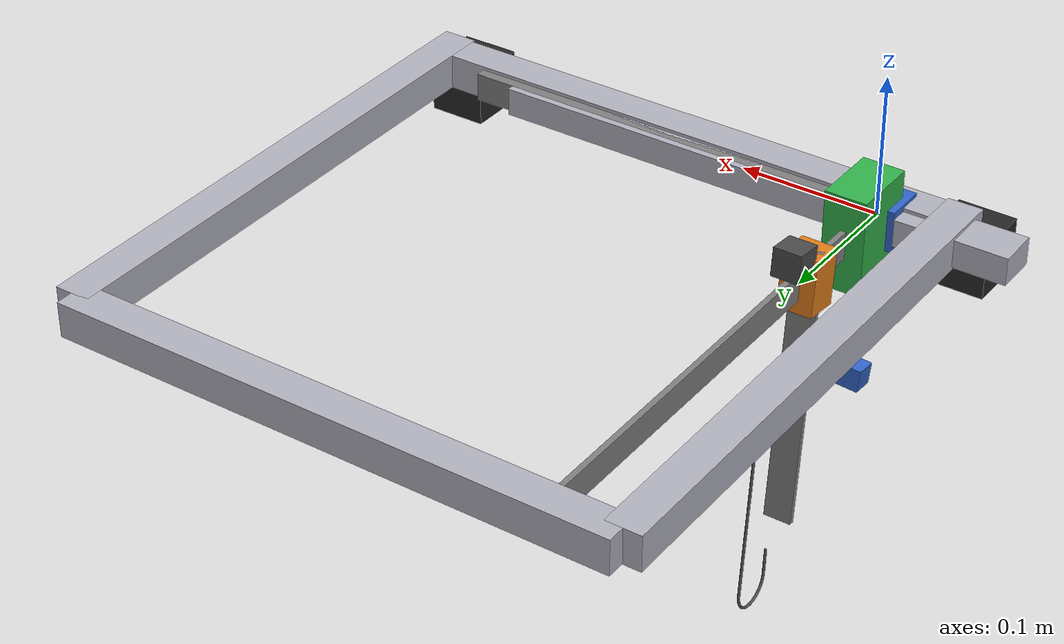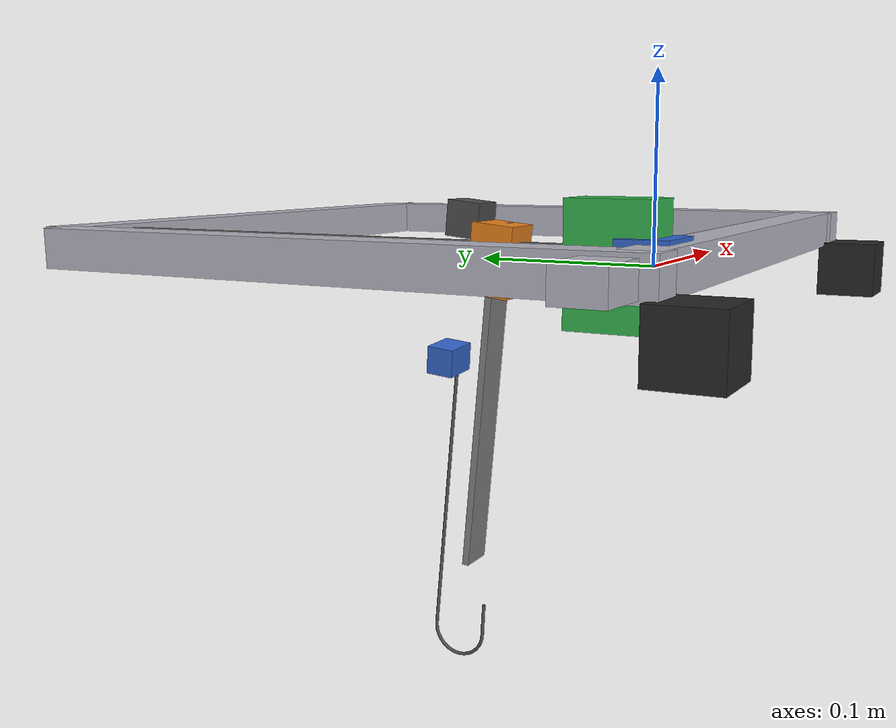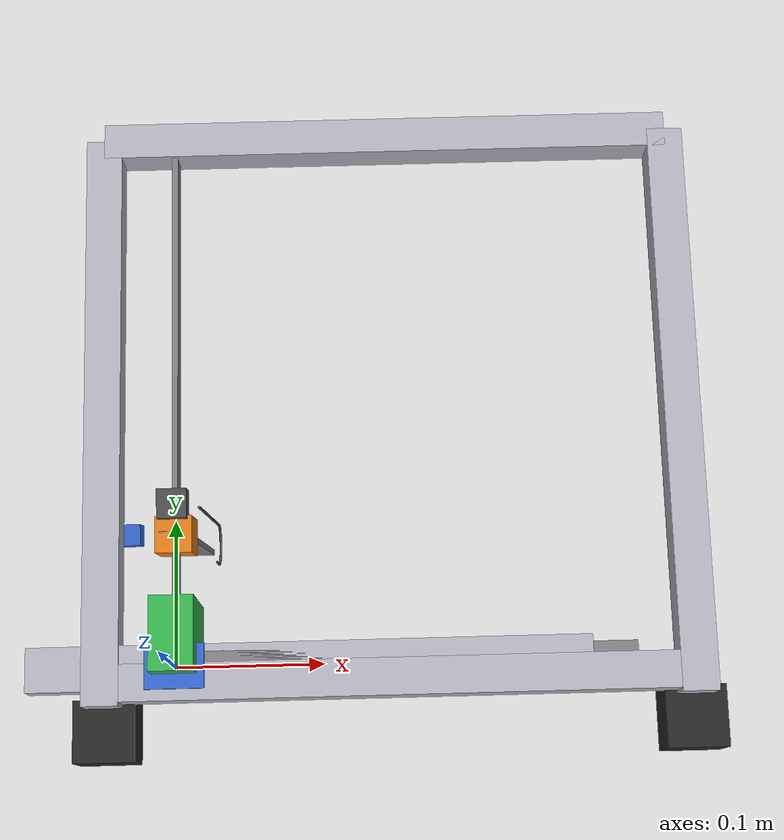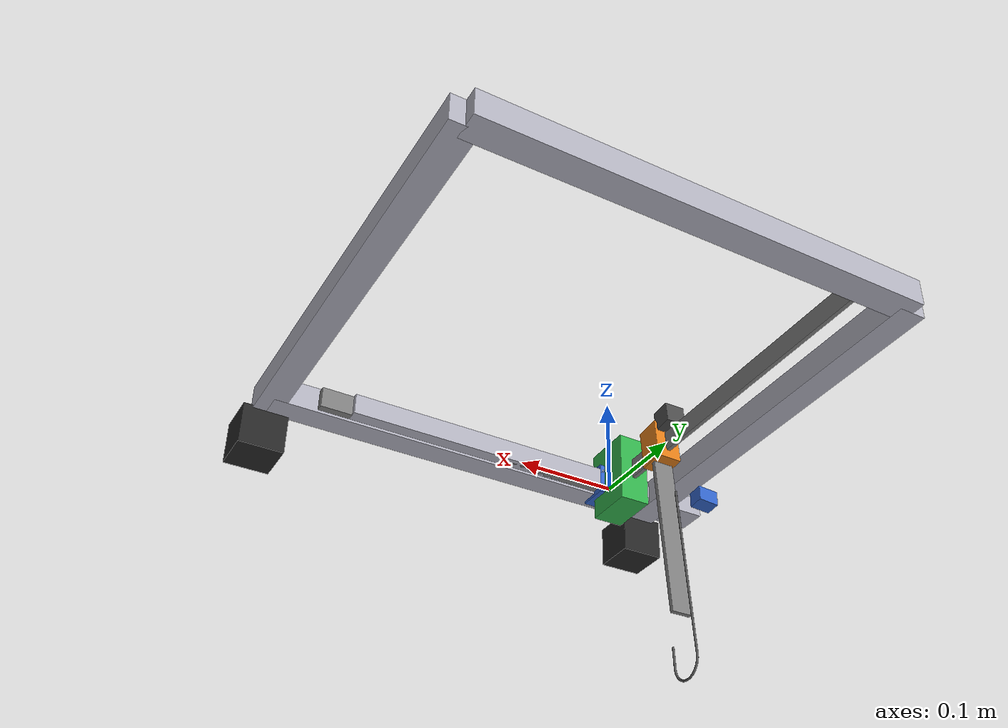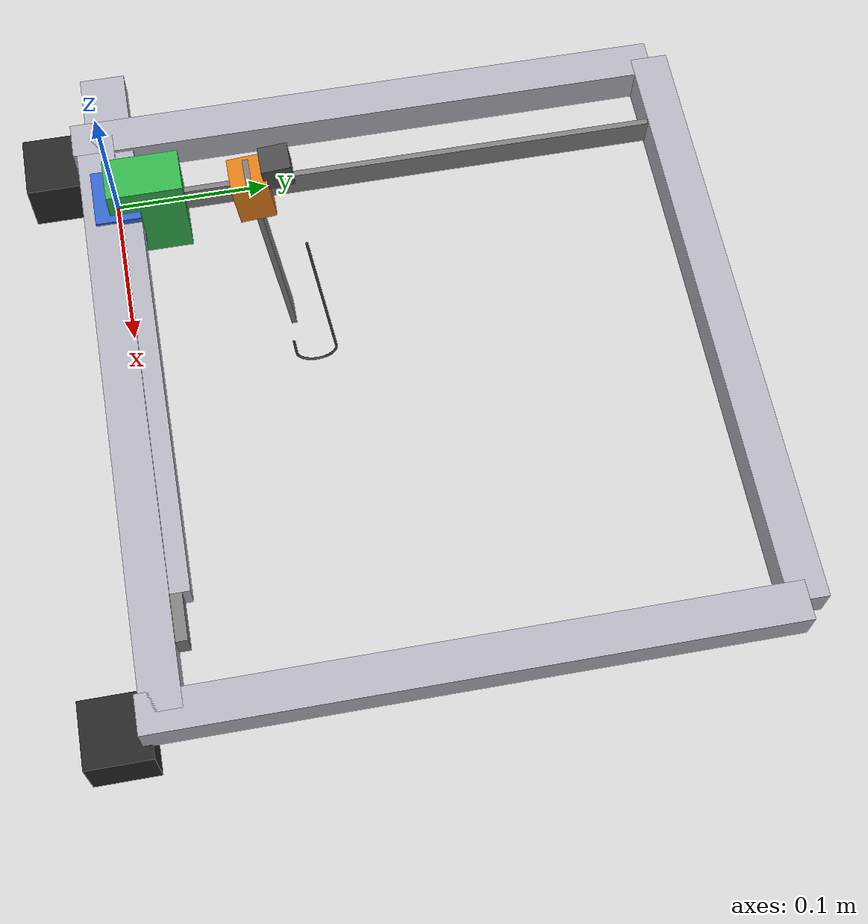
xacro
<?xml version="1.0"?>
<robot xmlns:xacro="http://www.ros.org/wiki/xacro" name="side_arm_v2">

  <!-- ==================== XACRO ARGUMENTS ==================== -->
  <xacro:arg name="prefix" default=""/>
  <xacro:property name="prefix" value="$(arg prefix)"/>

  <!-- ==================== MATERIALS ==================== -->
  <material name="rail_gray">
    <color rgba="0.5 0.5 0.5 1.0"/>
  </material>

  <material name="carriage_blue">
    <color rgba="0.2 0.4 0.8 1.0"/>
  </material>

  <material name="carriage_green">
    <color rgba="0.2 0.7 0.3 1.0"/>
  </material>

  <material name="carriage_orange">
    <color rgba="0.9 0.5 0.1 1.0"/>
  </material>

  <material name="hook_dark">
    <color rgba="0.3 0.3 0.3 1.0"/>
  </material>

  <material name="frame_silver">
    <color rgba="0.7 0.7 0.75 1.0"/>
  </material>

  <material name="motor_black">
    <color rgba="0.15 0.15 0.15 1.0"/>
  </material>

  <!-- ==================== BASE LINK ==================== -->
  <!-- Root link - connects to TF tree via static transform publisher -->
  <link name="${prefix}side_arm_origin">
    <visual>
      <origin xyz="0 0 0" rpy="0 0 0"/>
      <geometry>
        <sphere radius="0.01"/>
      </geometry>
      <material name="rail_gray"/>
    </visual>
  </link>

  <!-- ==================== FRAME STRUCTURE ==================== -->
  <!-- Vertical frame rails (left and right sides) -->
  <link name="${prefix}frame_left_rail">
    <visual>
      <origin xyz="0 0.175 0" rpy="0 0 0"/>
      <geometry>
        <box size="0.025 0.40 0.025"/>
      </geometry>
      <material name="frame_silver"/>
    </visual>
  </link>

  <joint name="${prefix}origin_to_frame_left" type="fixed">
    <parent link="${prefix}side_arm_origin"/>
    <child link="${prefix}frame_left_rail"/>
    <origin xyz="-0.05 0 0" rpy="0 0 0"/>
  </joint>

  <link name="${prefix}frame_right_rail">
    <visual>
      <origin xyz="0 0.175 0" rpy="0 0 0"/>
      <geometry>
        <box size="0.025 0.40 0.025"/>
      </geometry>
      <material name="frame_silver"/>
    </visual>
  </link>

  <joint name="${prefix}origin_to_frame_right" type="fixed">
    <parent link="${prefix}side_arm_origin"/>
    <child link="${prefix}frame_right_rail"/>
    <origin xyz="0.35 0 0" rpy="0 0 0"/>
  </joint>

  <!-- Bottom frame crossbar (fixed) -->
  <link name="${prefix}frame_bottom_bar">
    <visual>
      <origin xyz="0.20 0 0" rpy="0 0 0"/>
      <geometry>
        <box size="0.40 0.025 0.025"/>
      </geometry>
      <material name="frame_silver"/>
    </visual>
  </link>

  <joint name="${prefix}frame_left_to_bottom" type="fixed">
    <parent link="${prefix}frame_left_rail"/>
    <child link="${prefix}frame_bottom_bar"/>
    <origin xyz="0 -0.01 0" rpy="0 0 0"/>
  </joint>

  <!-- Top frame crossbar (fixed) -->
  <link name="${prefix}frame_top_bar">
    <visual>
      <origin xyz="0.20 0 0" rpy="0 0 0"/>
      <geometry>
        <box size="0.40 0.025 0.025"/>
      </geometry>
      <material name="frame_silver"/>
    </visual>
  </link>

  <joint name="${prefix}frame_left_to_top" type="fixed">
    <parent link="${prefix}frame_left_rail"/>
    <child link="${prefix}frame_top_bar"/>
    <origin xyz="0 0.375 0" rpy="0 0 0"/>
  </joint>

  <!-- ==================== STEPPER MOTORS (at base of frame) ==================== -->
  <!-- Stepper motor 1 (left side, bottom) -->
  <link name="${prefix}stepper_left">
    <visual>
      <origin xyz="0 0 0" rpy="0 0 0"/>
      <geometry>
        <box size="0.042 0.042 0.04"/>
      </geometry>
      <material name="motor_black"/>
    </visual>
  </link>

  <joint name="${prefix}frame_to_stepper_left" type="fixed">
    <parent link="${prefix}frame_left_rail"/>
    <child link="${prefix}stepper_left"/>
    <origin xyz="0 -0.04 -0.03" rpy="0 0 0"/>
  </joint>

  <!-- Stepper motor 2 (right side, bottom) -->
  <link name="${prefix}stepper_right">
    <visual>
      <origin xyz="0 0 0" rpy="0 0 0"/>
      <geometry>
        <box size="0.042 0.042 0.04"/>
      </geometry>
      <material name="motor_black"/>
    </visual>
  </link>

  <joint name="${prefix}frame_to_stepper_right" type="fixed">
    <parent link="${prefix}frame_right_rail"/>
    <child link="${prefix}stepper_right"/>
    <origin xyz="0 -0.04 -0.03" rpy="0 0 0"/>
  </joint>

  <!-- ==================== X-AXIS (HORIZONTAL) ==================== -->
  <link name="${prefix}x_rail_link">
    <visual>
      <origin xyz="0.15 0 0" rpy="0 0 0"/>  <!-- was 0.15 0 0 -->
      <geometry>
        <box size="0.32 0.02 0.02"/>
      </geometry>
      <material name="rail_gray"/>
    </visual>
  </link>

  <joint name="${prefix}base_to_x_rail" type="fixed">
    <parent link="${prefix}side_arm_origin"/>
    <child link="${prefix}x_rail_link"/>
    <origin xyz="0 0 0" rpy="0 0 0"/>
  </joint>

  <link name="${prefix}x_carriage_link">
    <visual>
      <origin xyz="0 0 0" rpy="0 0 0"/>
      <geometry>
        <box size="0.04 0.03 0.03"/>
      </geometry>
      <material name="carriage_blue"/>
    </visual>
  </link>

  <!-- Prismatic joint for X movement (0 to 0.3m) -->
  <joint name="${prefix}joint_x" type="prismatic">
    <parent link="${prefix}x_rail_link"/>
    <child link="${prefix}x_carriage_link"/>
    <origin xyz="0 0 0" rpy="0 0 0"/>
    <axis xyz="-1 0 0"/>  <!-- Same as V1 - config inversions handle mirroring -->
    <limit lower="0.0" upper="0.3" effort="10" velocity="0.1"/>
  </joint>

  <!-- ==================== Y-AXIS (VERTICAL - DUAL STEPPER) ==================== -->
  <!-- Y rail attached to X carriage -->
  <link name="${prefix}y_rail_link">
    <visual>
      <origin xyz="0 0.175 0" rpy="0 0 0"/>
      <geometry>
        <box size="0.004 0.38 0.02"/>
      </geometry>
      <material name="rail_gray"/>
    </visual>
  </link>

  <joint name="${prefix}x_carriage_to_y_rail" type="fixed">
    <parent link="${prefix}x_carriage_link"/>
    <child link="${prefix}y_rail_link"/>
    <origin xyz="0 0.02 0" rpy="0 0 0"/>
  </joint>

  <link name="${prefix}y_carriage_link">
    <visual>
      <origin xyz="0 0 0" rpy="0 0 0"/>
      <geometry>
        <box size="0.03 0.05 0.07"/>
      </geometry>
      <material name="carriage_green"/>
    </visual>
  </link>

  <!-- Prismatic joint for Y movement (0 to 0.35m) - increased range -->
  <joint name="${prefix}joint_y" type="prismatic">
    <parent link="${prefix}y_rail_link"/>
    <child link="${prefix}y_carriage_link"/>
    <origin xyz="0 0 0" rpy="0 0 0"/>
    <axis xyz="0 1 0"/>
    <limit lower="0.0" upper="0.35" effort="10" velocity="0.05"/>
  </joint>

  <!-- ==================== MOVING CROSSBAR (travels with Y) ==================== -->
  <!-- This crossbar moves up/down with the Y carriage -->
  <link name="${prefix}moving_crossbar">
    <visual>
      <origin xyz="0 0 0" rpy="0 0 0"/>
      <geometry>
        <box size="0.38 0.03 0.02"/>
      </geometry>
      <material name="frame_silver"/>
    </visual>
  </link>

  <joint name="${prefix}y_carriage_to_crossbar" type="prismatic">
    <parent link="${prefix}frame_left_rail"/>
    <child link="${prefix}moving_crossbar"/>
    <origin xyz="0.14 0 0" rpy="0 0 0"/>
    <axis xyz="0 1 0"/>
    <limit lower="0.0" upper="0.35" effort="10" velocity="0.05"/>
  </joint>

  <!-- ==================== Z-AXIS (DEPTH) ==================== -->
  <link name="${prefix}z_rail_link">
    <visual>
      <origin xyz="0 0 -0.08" rpy="0 0 0"/>
      <geometry>
        <box size="0.02 0.004 0.20"/>
      </geometry>
      <material name="rail_gray"/>
    </visual>
  </link>

  <joint name="${prefix}y_carriage_to_z_rail" type="fixed">
    <parent link="${prefix}y_carriage_link"/>
    <child link="${prefix}z_rail_link"/>
    <origin xyz="0 0.07 0" rpy="0.1 0 0"/>
  </joint>

  <link name="${prefix}z_carriage_link">
    <visual>
      <origin xyz="0 0 0" rpy="0 0 0"/>
      <geometry>
        <box size="0.025 0.025 0.04"/>
      </geometry>
      <material name="carriage_orange"/>
    </visual>
  </link>

  <!-- Prismatic joint for Z movement (0 to 0.20m) -->
  <joint name="${prefix}joint_z" type="prismatic">
    <parent link="${prefix}z_rail_link"/>
    <child link="${prefix}z_carriage_link"/>
    <origin xyz="0 0 0" rpy="0 0 0"/>
    <axis xyz="0 0 1"/>
    <limit lower="0.0" upper="0.20" effort="10" velocity="0.01"/>
  </joint>

  <!-- ==================== SERVO/HOOK ==================== -->
  <link name="${prefix}servo_link">
    <visual>
      <origin xyz="0 0 0" rpy="0 0 0"/>
      <geometry>
        <box size="0.02 0.02 0.02"/>
      </geometry>
      <material name="hook_dark"/>
    </visual>
  </link>

  <joint name="${prefix}joint_servo" type="revolute">
    <parent link="${prefix}z_carriage_link"/>
    <child link="${prefix}servo_link"/>
    <origin xyz="0 0.02 0.02" rpy="0 0 0"/>
    <axis xyz="0 0 1"/>
    <limit lower="-0.5" upper="0.5" effort="1" velocity="1.0"/>
  </joint>

  <link name="${prefix}hook_link">
    <visual>
      <origin xyz="0 -0.015 0" rpy="-1.5708 0 1.5708"/>
      <geometry>
        <mesh filename="package://side_arm_control/meshes/hook.stl" scale="0.001 0.001 0.001"/>
      </geometry>
      <material name="hook_dark"/>
    </visual>
  </link>

  <joint name="${prefix}servo_to_hook" type="fixed">
    <parent link="${prefix}servo_link"/>
    <child link="${prefix}hook_link"/>
    <origin xyz="0.01 0.009 -0.18" rpy="0 0 0"/>
  </joint>

  <!-- ==================== CAMERA FRAME ==================== -->
  <link name="${prefix}camera_frame">
    <visual>
      <origin xyz="0 0 0" rpy="0 0 0"/>
      <geometry>
        <box size="0.02 0.015 0.015"/>
      </geometry>
      <material name="carriage_blue"/>
    </visual>
  </link>

  <joint name="${prefix}y_carriage_to_camera" type="fixed">
    <parent link="${prefix}y_carriage_link"/>
    <child link="${prefix}camera_frame"/>
    <origin xyz="-0.04 0.08 -0.05" rpy="0.1 3.2116 3.1416"/>
  </joint>

</robot>
